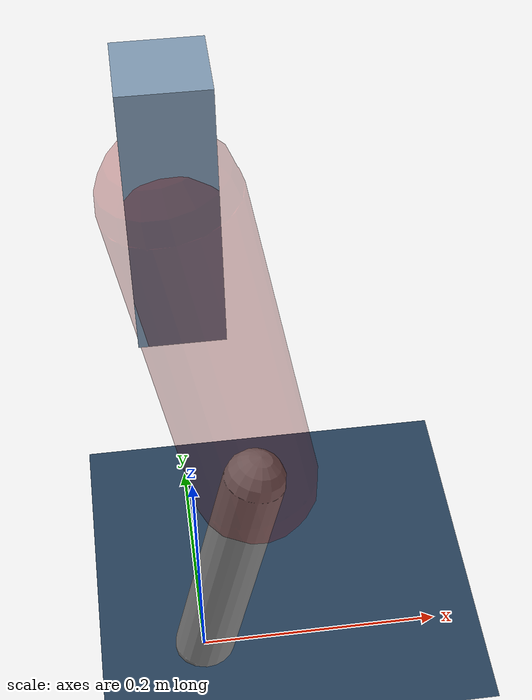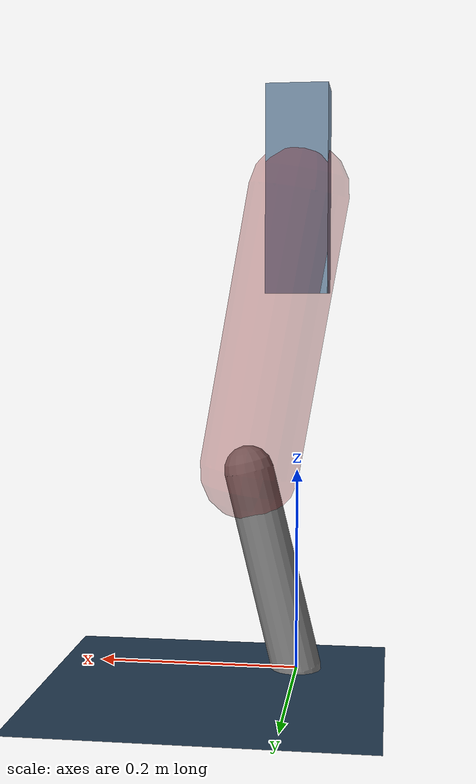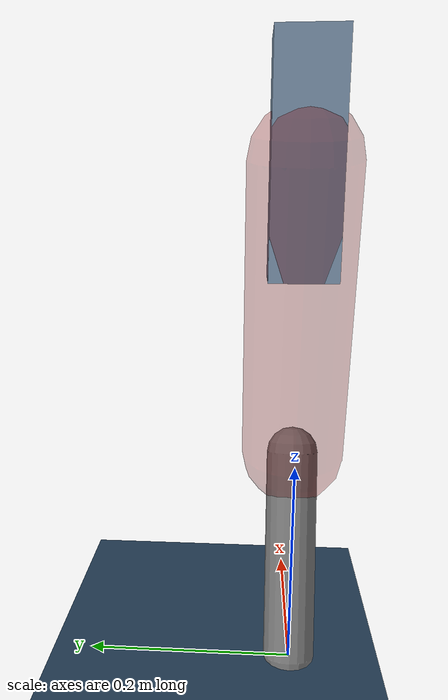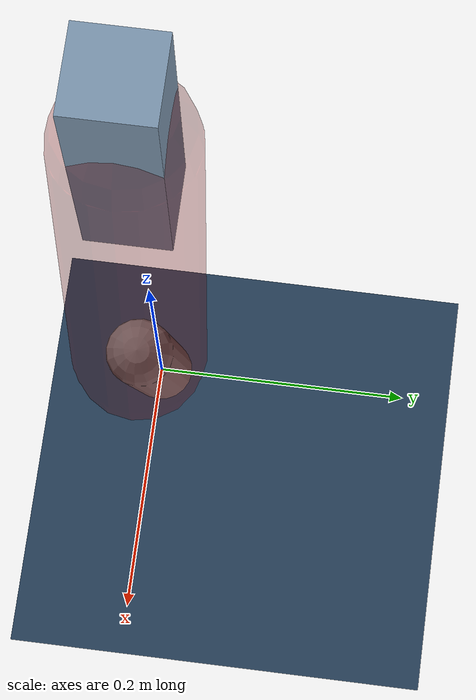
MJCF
<mujoco model="Hopper2D">
	<compiler inertiafromgeom="true" angle="radian" />
	<option timestep="0.001" integrator="implicit" cone="elliptic" solver="Newton" tolerance="1e-10" />

	<default>
		<geom contype="1" conaffinity="1" condim="3" friction="2 0.005 0.0001" solref="0.005 1" />
		<joint limited="true" damping="0.1" />
	</default>

	<asset>
		<texture name="skybox" type="skybox" builtin="gradient" rgb1=".4 .6 .8" rgb2="0 0 0" width="800" height="800" />
		<texture name="grid" type="2d" builtin="checker" rgb1=".1 .2 .3" rgb2=".2 .3 .4" width="300" height="300" mark="edge" markrgb=".2 .3 .4" />
		<material name="ground" texture="grid" texrepeat="1 1" texuniform="true" reflectance="0.1" />
		<material name="leg" rgba="0.5 0.6 0.7 1" />
	</asset>

	<worldbody>

		<geom name="floor" type="plane" size="5 5 0.25" material="ground" />

		<light directional="false" diffuse="0.8 0.8 0.8" specular="0.3 0.3 0.3" pos="0 0 2" dir="0 0 -1" />
		<light mode="targetbodycom" target="base" directional="false" diffuse="0.8 0.8 0.8" specular="0.3 0.3 0.3" pos="0 0 2" dir="0 0 -1" />

		<camera name="fixed" pos="0 -2 1" xyaxes="1 0 0 0 0 1" />
		<camera name="tracking" mode="trackcom" pos="0 -3 1" />

		<body name="root" pos="0 0 0.4752678932026405">
			<joint name="slide_x" type="slide" axis="1 0 0" range="-100 100" />
			<joint name="slide_z" type="slide" axis="0 0 1" range="0 10" />

			<body name="base" pos="0 0 0">
				<geom name="torso" type="box" size="0.03 0.03 0.1" mass="2.326" material="leg" />

				<body name="link1" pos="0 0 0" euler="0 1.3974786457722332 0">
					<joint type="hinge" axis="0 -1 0" pos="0 0 0" name="hinge1" limited="true" range="-3.14 3.14" stiffness="0" damping="0.1" />
					<geom name="thigh" type="capsule" fromto="0 0 0 0.28052311031300725 0 0" size="0.05" rgba="0.5 0 0 0.3" mass="0.9365123978451195" />

					<body name="link2" pos="0.28052311031300725 0 0" euler="0 0.411850667516986 0">
						<joint type="hinge" axis="0 -1 0" pos="0 0 0" name="hinge2" limited="true" range="-3.14 3.14" stiffness="0" damping="0.1" />
						<geom name="shank" type="capsule" fromto="0 0 0 0.20474478288963327 0 0" size="0.025" mass="0.4048958263117066" />

					</body>
				</body>
			</body>
		</body>
	</worldbody>

	<actuator>
		<motor name="torque1" joint="hinge1" ctrlrange="-80.54571917442621 80.54571917442621" ctrllimited="true" gear="1" />
		<motor name="torque2" joint="hinge2" ctrlrange="-79.33726027806522 79.33726027806522" ctrllimited="true" gear="1" />
	</actuator>
</mujoco>
